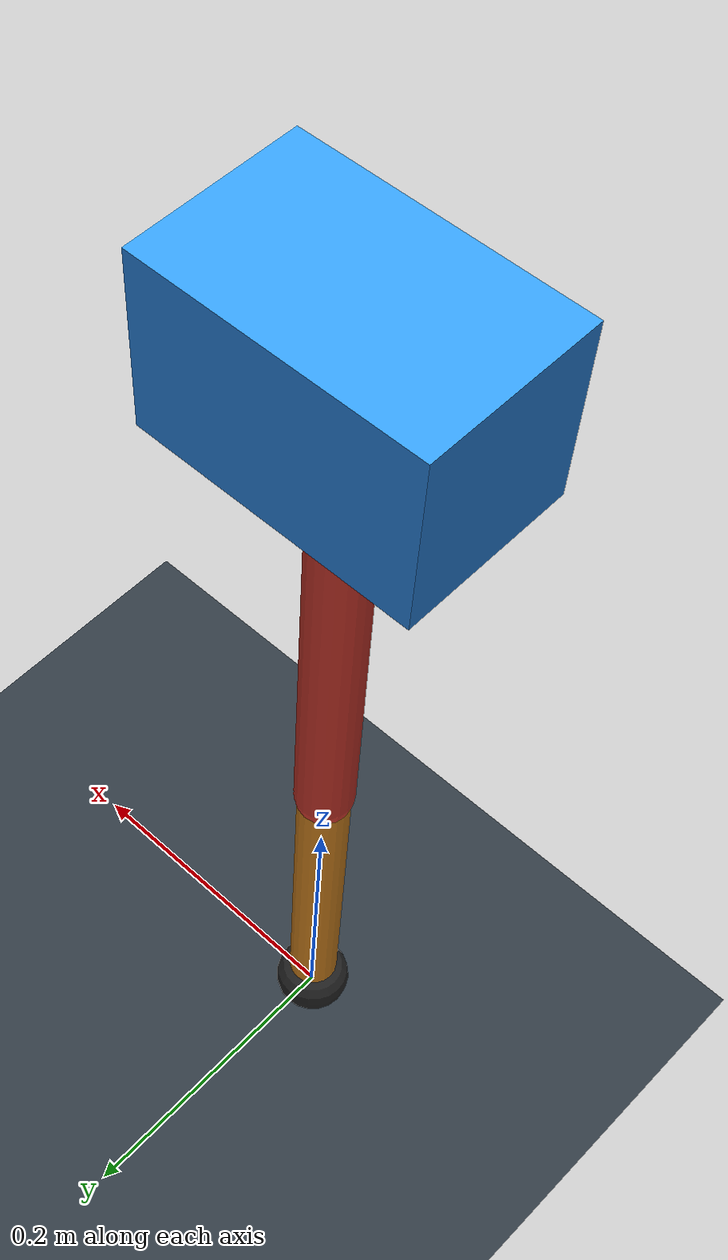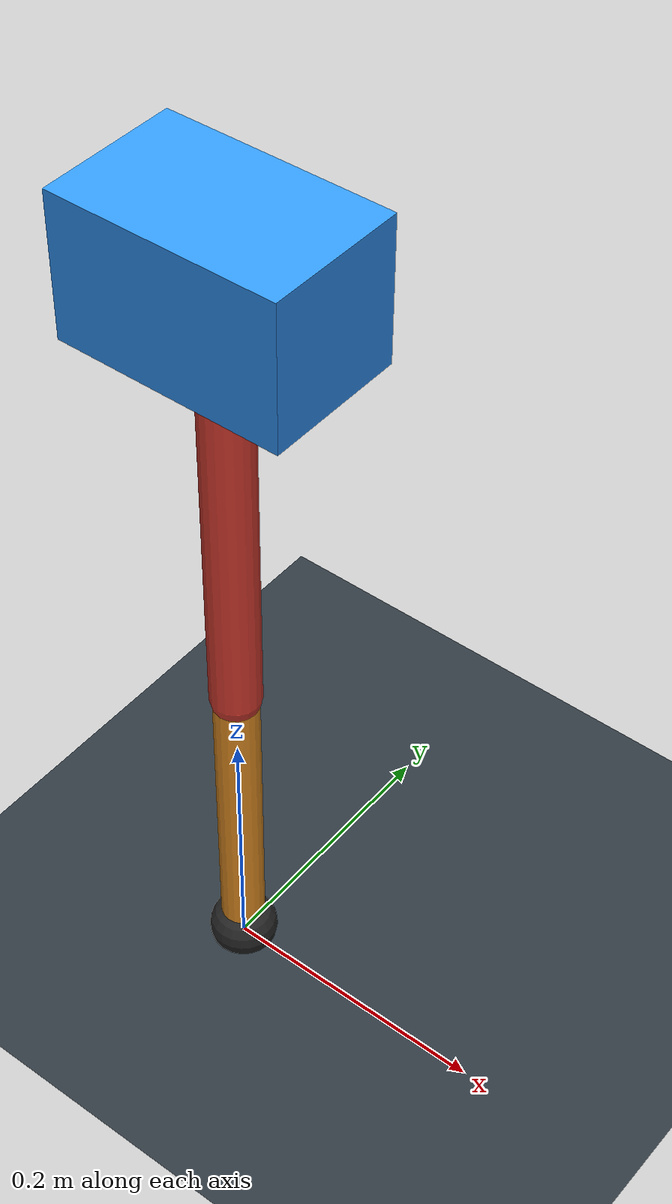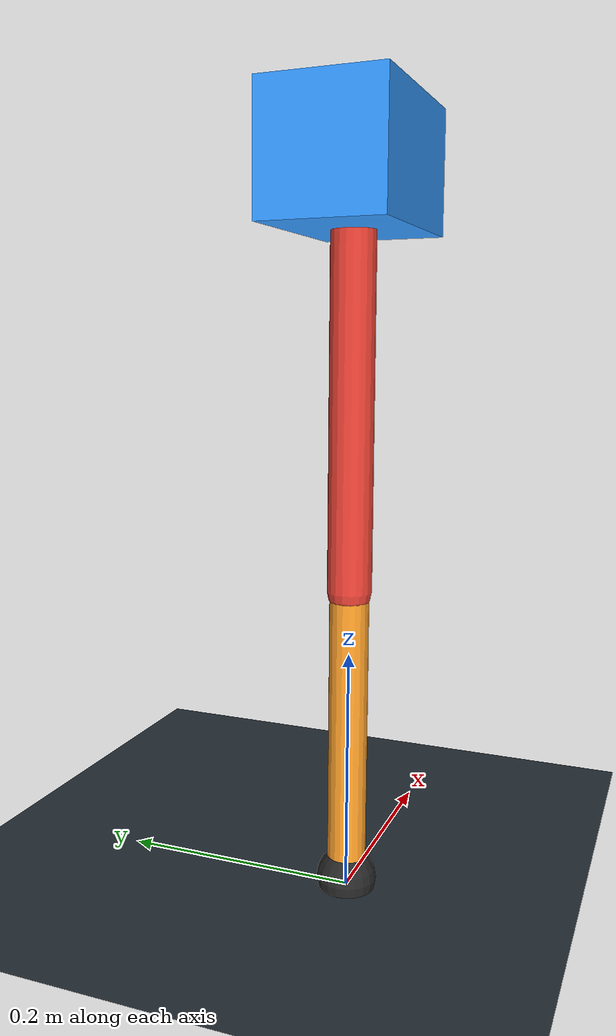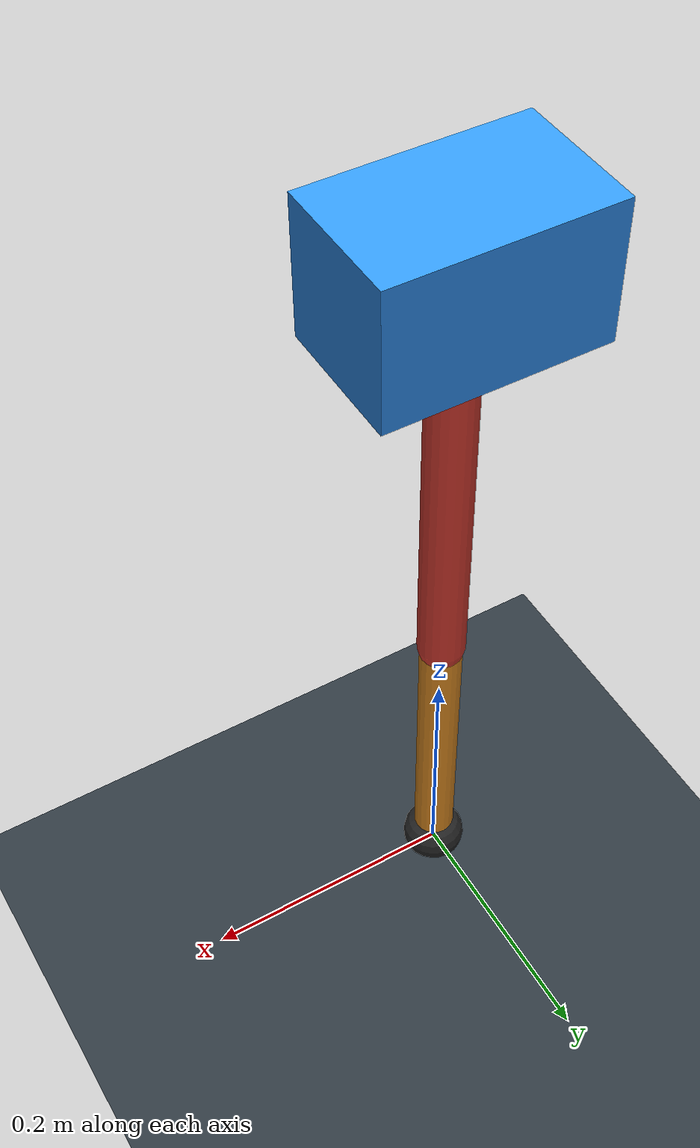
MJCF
<mujoco model="single_axis_two_bar">
  <compiler angle="radian" inertiafromgeom="true"/>
  <option timestep="0.001" integrator="implicitfast" gravity="0 0 -9.81"/>
  <default>
    <joint damping="0.08"/>
    <geom friction="1.2 0.01 0.0001" condim="3"/>
  </default>
  <worldbody>
    <geom name="floor" type="plane" size="5 5 0.1" rgba="0.18 0.22 0.25 1"/>
    <body name="carriage" pos="0 0 0.5867063670447848">
      <joint name="pole_slide" type="slide" axis="0 0 1"/>
      <geom name="payload" type="box" size="0.08 0.05 0.05" mass="3.2561740774885317" rgba="0.2 0.6 1 1"/>
      <body name="thigh" pos="0 0 0">
        <joint name="hip" type="hinge" axis="0 1 0"/>
        <geom name="thigh_link" type="capsule" fromto="0 0 0 0 0 -0.334129420345015" size="0.018" mass="0.23807162712657332" rgba="0.9 0.25 0.2 1"/>
        <body name="shank" pos="0 0 -0.334129420345015">
          <joint name="knee" type="hinge" axis="0 1 0"/>
          <geom name="shank_link" type="capsule" fromto="0 0 0 0 0 -0.24494930856713426" size="0.016" mass="0.1745296190736254" rgba="0.95 0.6 0.15 1"/>
          <geom name="foot" type="sphere" pos="0 0 -0.24494930856713426" size="0.025" mass="0.03" rgba="0.15 0.15 0.15 1"/>
          <site name="toe" pos="0 0 -0.24494930856713426" size="0.008"/>
        </body>
      </body>
    </body>
  </worldbody>
  <actuator>
    <motor name="hip_motor" joint="hip" ctrlrange="-45.25933137080849 45.25933137080849"/>
    <motor name="knee_motor" joint="knee" ctrlrange="-75.48450128851928 75.48450128851928"/>
  </actuator>
</mujoco>
